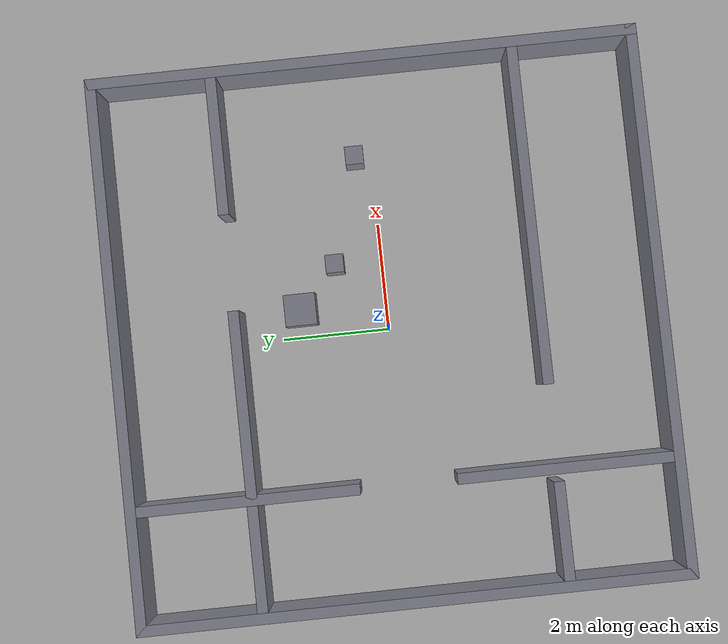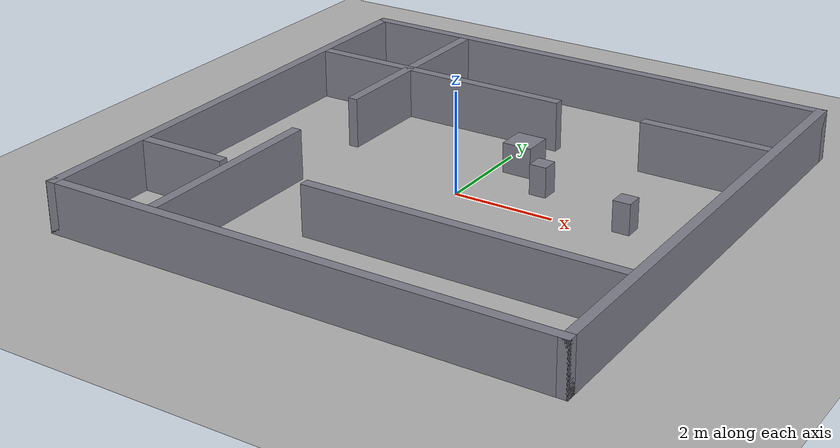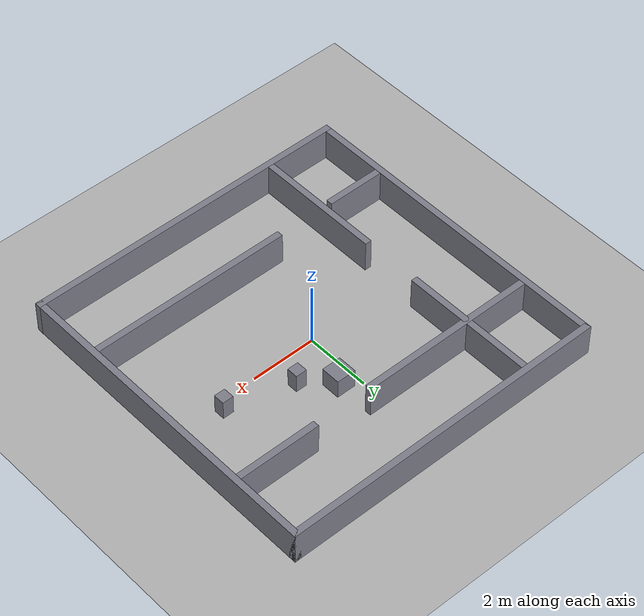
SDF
<?xml version="1.0"?>
<sdf version="1.10">
  <world name="scenario_6">
    <physics name="fast" type="ignored">
      <max_step_size>0.005</max_step_size>
      <real_time_factor>1.0</real_time_factor>
      <real_time_update_rate>200</real_time_update_rate>
    </physics>
    <plugin filename="gz-sim-physics-system" name="gz::sim::systems::Physics"/>
    <plugin filename="gz-sim-user-commands-system" name="gz::sim::systems::UserCommands"/>
    <plugin filename="gz-sim-scene-broadcaster-system" name="gz::sim::systems::SceneBroadcaster"/>
    <plugin filename="gz-sim-sensors-system" name="gz::sim::systems::Sensors">
      <render_engine>ogre2</render_engine>
    </plugin>
    <light type="directional" name="sun">
      <cast_shadows>false</cast_shadows>
      <pose>0 0 10 0 0 0</pose>
      <diffuse>0.9 0.9 0.9 1</diffuse>
      <direction>-0.5 0.2 -0.9</direction>
    </light>
    <model name="ground_plane">
      <static>true</static>
      <link name="link">
        <collision name="c"><geometry><plane><normal>0 0 1</normal><size>20 20</size></plane></geometry></collision>
        <visual name="v"><geometry><plane><normal>0 0 1</normal><size>20 20</size></plane></geometry>
          <material><ambient>0.7 0.7 0.7 1</ambient><diffuse>0.7 0.7 0.7 1</diffuse></material></visual>
      </link>
    </model>
    <model name="box_0">
      <static>true</static>
      <pose>0.0 5.0 0.5 0 0 0</pose>
      <link name="link">
        <collision name="c"><geometry><box><size>10.2 0.2 1.0</size></box></geometry></collision>
        <visual name="v"><geometry><box><size>10.2 0.2 1.0</size></box></geometry>
          <material><ambient>0.5 0.5 0.55 1</ambient><diffuse>0.5 0.5 0.55 1</diffuse></material></visual>
      </link>
    </model>
    <model name="box_1">
      <static>true</static>
      <pose>0.0 -5.0 0.5 0 0 0</pose>
      <link name="link">
        <collision name="c"><geometry><box><size>10.2 0.2 1.0</size></box></geometry></collision>
        <visual name="v"><geometry><box><size>10.2 0.2 1.0</size></box></geometry>
          <material><ambient>0.5 0.5 0.55 1</ambient><diffuse>0.5 0.5 0.55 1</diffuse></material></visual>
      </link>
    </model>
    <model name="box_2">
      <static>true</static>
      <pose>5.0 0.0 0.5 0 0 0</pose>
      <link name="link">
        <collision name="c"><geometry><box><size>0.2 10.2 1.0</size></box></geometry></collision>
        <visual name="v"><geometry><box><size>0.2 10.2 1.0</size></box></geometry>
          <material><ambient>0.5 0.5 0.55 1</ambient><diffuse>0.5 0.5 0.55 1</diffuse></material></visual>
      </link>
    </model>
    <model name="box_3">
      <static>true</static>
      <pose>-5.0 0.0 0.5 0 0 0</pose>
      <link name="link">
        <collision name="c"><geometry><box><size>0.2 10.2 1.0</size></box></geometry></collision>
        <visual name="v"><geometry><box><size>0.2 10.2 1.0</size></box></geometry>
          <material><ambient>0.5 0.5 0.55 1</ambient><diffuse>0.5 0.5 0.55 1</diffuse></material></visual>
      </link>
    </model>
    <model name="box_4">
      <static>true</static>
      <pose>-4.001840807388559 -2.78 0.5 0 0 0</pose>
      <link name="link">
        <collision name="c"><geometry><box><size>1.7963183852228832 0.2 1.0</size></box></geometry></collision>
        <visual name="v"><geometry><box><size>1.7963183852228832 0.2 1.0</size></box></geometry>
          <material><ambient>0.5 0.5 0.55 1</ambient><diffuse>0.5 0.5 0.55 1</diffuse></material></visual>
      </link>
    </model>
    <model name="box_5">
      <static>true</static>
      <pose>1.7831591926114414 -2.78 0.5 0 0 0</pose>
      <link name="link">
        <collision name="c"><geometry><box><size>6.233681614777118 0.2 1.0</size></box></geometry></collision>
        <visual name="v"><geometry><box><size>6.233681614777118 0.2 1.0</size></box></geometry>
          <material><ambient>0.5 0.5 0.55 1</ambient><diffuse>0.5 0.5 0.55 1</diffuse></material></visual>
      </link>
    </model>
    <model name="box_6">
      <static>true</static>
      <pose>-2.157462480455697 2.79 0.5 0 0 0</pose>
      <link name="link">
        <collision name="c"><geometry><box><size>5.485075039088606 0.2 1.0</size></box></geometry></collision>
        <visual name="v"><geometry><box><size>5.485075039088606 0.2 1.0</size></box></geometry>
          <material><ambient>0.5 0.5 0.55 1</ambient><diffuse>0.5 0.5 0.55 1</diffuse></material></visual>
      </link>
    </model>
    <model name="box_7">
      <static>true</static>
      <pose>3.6275375195443034 2.79 0.5 0 0 0</pose>
      <link name="link">
        <collision name="c"><geometry><box><size>2.544924960911394 0.2 1.0</size></box></geometry></collision>
        <visual name="v"><geometry><box><size>2.544924960911394 0.2 1.0</size></box></geometry>
          <material><ambient>0.5 0.5 0.55 1</ambient><diffuse>0.5 0.5 0.55 1</diffuse></material></visual>
      </link>
    </model>
    <model name="box_8">
      <static>true</static>
      <pose>-2.87 -2.9274268204719167 0.5 0 0 0</pose>
      <link name="link">
        <collision name="c"><geometry><box><size>0.2 3.9451463590561673 1.0</size></box></geometry></collision>
        <visual name="v"><geometry><box><size>0.2 3.9451463590561673 1.0</size></box></geometry>
          <material><ambient>0.5 0.5 0.55 1</ambient><diffuse>0.5 0.5 0.55 1</diffuse></material></visual>
      </link>
    </model>
    <model name="box_9">
      <static>true</static>
      <pose>-2.87 2.8575731795280834 0.5 0 0 0</pose>
      <link name="link">
        <collision name="c"><geometry><box><size>0.2 4.084853640943834 1.0</size></box></geometry></collision>
        <visual name="v"><geometry><box><size>0.2 4.084853640943834 1.0</size></box></geometry>
          <material><ambient>0.5 0.5 0.55 1</ambient><diffuse>0.5 0.5 0.55 1</diffuse></material></visual>
      </link>
    </model>
    <model name="box_10">
      <static>true</static>
      <pose>3.28 0.31 0.3 0 0 0</pose>
      <link name="link">
        <collision name="c"><geometry><box><size>0.34 0.34 0.6</size></box></geometry></collision>
        <visual name="v"><geometry><box><size>0.34 0.34 0.6</size></box></geometry>
          <material><ambient>0.5 0.5 0.55 1</ambient><diffuse>0.5 0.5 0.55 1</diffuse></material></visual>
      </link>
    </model>
    <model name="box_11">
      <static>true</static>
      <pose>0.51 1.6 0.3 0 0 0</pose>
      <link name="link">
        <collision name="c"><geometry><box><size>0.59 0.59 0.6</size></box></geometry></collision>
        <visual name="v"><geometry><box><size>0.59 0.59 0.6</size></box></geometry>
          <material><ambient>0.5 0.5 0.55 1</ambient><diffuse>0.5 0.5 0.55 1</diffuse></material></visual>
      </link>
    </model>
    <model name="box_12">
      <static>true</static>
      <pose>1.3 0.88 0.3 0 0 0</pose>
      <link name="link">
        <collision name="c"><geometry><box><size>0.34 0.34 0.6</size></box></geometry></collision>
        <visual name="v"><geometry><box><size>0.34 0.34 0.6</size></box></geometry>
          <material><ambient>0.5 0.5 0.55 1</ambient><diffuse>0.5 0.5 0.55 1</diffuse></material></visual>
      </link>
    </model>
  </world>
</sdf>
